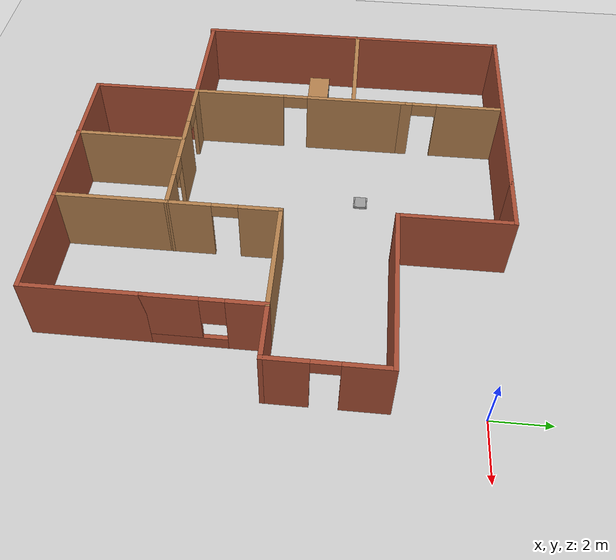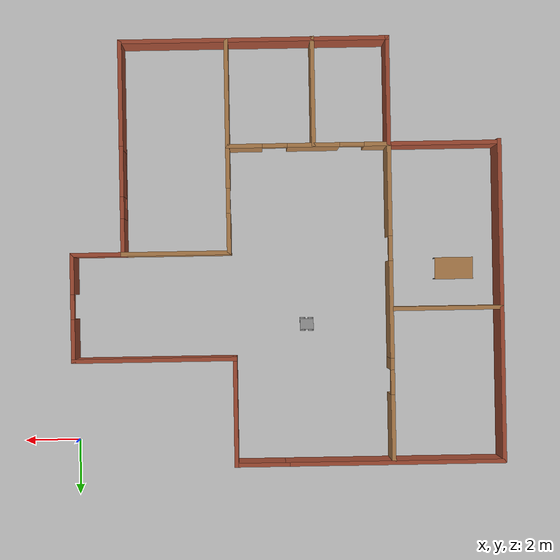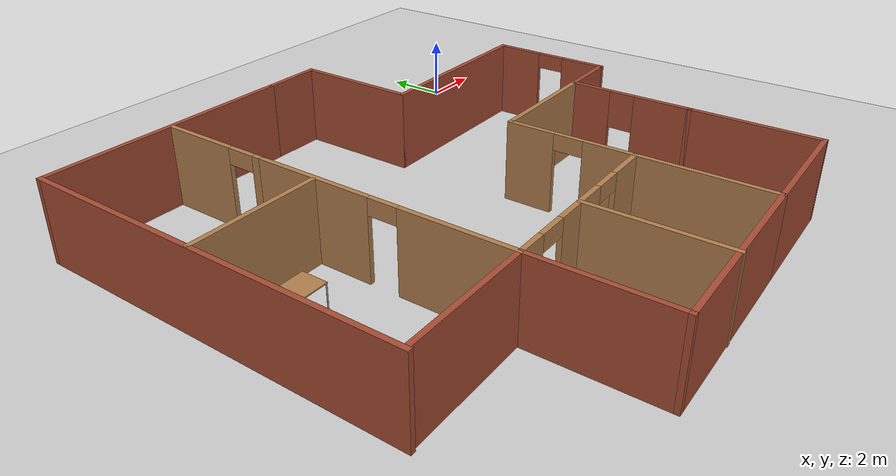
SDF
<sdf version="1.6">
 <world name="default">
  <model name="ground_plane">
   <static>1</static>
   <link name="link">
    <collision name="collision">
     <geometry><plane><normal>0 0 1</normal><size>100 100</size></plane></geometry>
     <surface><friction><ode><mu>100</mu><mu2>50</mu2></ode></friction></surface>
    </collision>
    <visual name="visual">
     <cast_shadows>0</cast_shadows>
     <geometry><plane><normal>0 0 1</normal><size>100 100</size></plane></geometry>
     <material>
      <script><uri>file://media/materials/scripts/gazebo.material</uri><name>Gazebo/Grey</name></script>
     </material>
    </visual>
   </link>
  </model>
  <model name="Building">
   <pose>-7.76735 -6.83416 0 0 -0 0</pose>
   <link name="Wall_0">
    <collision name="Wall_0_Collision">
     <geometry><box><size>2 0.15 2.5</size></box></geometry>
     <pose>0 0 1.25 0 -0 0</pose>
    </collision>
    <visual name="Wall_0_Visual">
     <pose>0 0 1.25 0 -0 0</pose>
     <geometry><box><size>2 0.15 2.5</size></box></geometry>
     <material>
      <script><uri>file://media/materials/scripts/gazebo.material</uri><name>Gazebo/Bricks</name></script>
      <ambient>1 1 1 1</ambient>
     </material>
    </visual>
    <pose>1 7.71108 0 0 -0 0</pose>
   </link>
   <link name="Wall_1">
    <collision name="Wall_1_Collision">
     <geometry><box><size>4 0.15 2.5</size></box></geometry>
     <pose>0 0 1.25 0 -0 0</pose>
    </collision>
    <visual name="Wall_1_Visual">
     <pose>0 0 1.25 0 -0 0</pose>
     <geometry><box><size>4 0.15 2.5</size></box></geometry>
     <material>
      <script><uri>file://media/materials/scripts/gazebo.material</uri><name>Gazebo/Bricks</name></script>
      <ambient>1 1 1 1</ambient>
     </material>
    </visual>
    <pose>1.925 5.78608 0 0 0 -1.5708</pose>
   </link>
   <link name="Wall_10">
    <collision name="Wall_10_Collision">
     <geometry><box><size>6 0.15 2.5</size></box></geometry>
     <pose>0 0 1.25 0 -0 0</pose>
    </collision>
    <visual name="Wall_10_Visual">
     <pose>0 0 1.25 0 -0 0</pose>
     <geometry><box><size>6 0.15 2.5</size></box></geometry>
     <material>
      <script><uri>file://media/materials/scripts/gazebo.material</uri><name>Gazebo/Bricks</name></script>
      <ambient>1 1 1 1</ambient>
     </material>
    </visual>
    <pose>-0.849999 -7.68892 0 0 -0 3.14159</pose>
   </link>
   <link name="Wall_105">
    <collision name="Wall_105_Collision">
     <geometry><box><size>4 0.15 2.5</size></box></geometry>
     <pose>0 0 1.25 0 -0 0</pose>
    </collision>
    <visual name="Wall_105_Visual">
     <pose>0 0 1.25 0 -0 0</pose>
     <geometry><box><size>4 0.15 2.5</size></box></geometry>
     <material>
      <script><uri>file://media/materials/scripts/gazebo.material</uri><name>Gazebo/Wood</name></script>
      <ambient>0.760784 0.662745 0.627451 1</ambient>
     </material>
    </visual>
    <pose>2.075 -5.76392 0 0 0 -1.5708</pose>
   </link>
   <link name="Wall_109">
    <collision name="Wall_109_Collision">
     <geometry><box><size>4 0.15 2.5</size></box></geometry>
     <pose>0 0 1.25 0 -0 0</pose>
    </collision>
    <visual name="Wall_109_Visual">
     <pose>0 0 1.25 0 -0 0</pose>
     <geometry><box><size>4 0.15 2.5</size></box></geometry>
     <material>
      <script><uri>file://media/materials/scripts/gazebo.material</uri><name>Gazebo/Wood</name></script>
      <ambient>0.760784 0.662745 0.627451 1</ambient>
     </material>
    </visual>
    <pose>-1.05166 -5.78608 0 0 0 -1.5708</pose>
   </link>
   <link name="Wall_11">
    <collision name="Wall_11_Collision">
     <geometry><box><size>4 0.15 2.5</size></box></geometry>
     <pose>0 0 1.25 0 -0 0</pose>
    </collision>
    <visual name="Wall_11_Visual">
     <pose>0 0 1.25 0 -0 0</pose>
     <geometry><box><size>4 0.15 2.5</size></box></geometry>
     <material>
      <script><uri>file://media/materials/scripts/gazebo.material</uri><name>Gazebo/Bricks</name></script>
      <ambient>1 1 1 1</ambient>
     </material>
    </visual>
    <pose>-3.775 -5.76392 0 0 -0 1.5708</pose>
   </link>
   <link name="Wall_113">
    <pose>-3.775 5.81108 0 0 -0 1.5708</pose>
    <visual name="Wall_113_Visual_0">
     <pose>-1.66581 0 1.25 0 -0 0</pose>
     <geometry><box><size>0.418378 0.15 2.5</size></box></geometry>
     <material>
      <script><uri>file://media/materials/scripts/gazebo.material</uri><name>Gazebo/Wood</name></script>
      <ambient>0.435294 0.796078 0.67451 1</ambient>
     </material>
    </visual>
    <collision name="Wall_113_Collision_0">
     <geometry><box><size>0.418378 0.15 2.5</size></box></geometry>
     <pose>-1.66581 0 1.25 0 -0 0</pose>
    </collision>
    <visual name="Wall_113_Visual_1">
     <pose>0.659189 0 1.25 0 -0 0</pose>
     <geometry><box><size>2.43162 0.15 2.5</size></box></geometry>
     <material>
      <script><uri>file://media/materials/scripts/gazebo.material</uri><name>Gazebo/Wood</name></script>
      <ambient>0.435294 0.796078 0.67451 1</ambient>
     </material>
    </visual>
    <collision name="Wall_113_Collision_1">
     <geometry><box><size>2.43162 0.15 2.5</size></box></geometry>
     <pose>0.659189 0 1.25 0 -0 0</pose>
    </collision>
    <visual name="Wall_113_Visual_2">
     <pose>-1.00662 0 2.25 0 -0 0</pose>
     <geometry><box><size>0.9 0.15 0.5</size></box></geometry>
     <material>
      <script><uri>file://media/materials/scripts/gazebo.material</uri><name>Gazebo/Wood</name></script>
      <ambient>0.435294 0.796078 0.67451 1</ambient>
     </material>
    </visual>
    <collision name="Wall_113_Collision_2">
     <geometry><box><size>0.9 0.15 0.5</size></box></geometry>
     <pose>-1.00662 0 2.25 0 -0 0</pose>
    </collision>
   </link>
   <link name="Wall_115">
    <collision name="Wall_115_Collision">
     <geometry><box><size>4 0.15 2.5</size></box></geometry>
     <pose>0 0 1.25 0 -0 0</pose>
    </collision>
    <visual name="Wall_115_Visual">
     <pose>0 0 1.25 0 -0 0</pose>
     <geometry><box><size>4 0.15 2.5</size></box></geometry>
     <material>
      <script><uri>file://media/materials/scripts/gazebo.material</uri><name>Gazebo/Wood</name></script>
      <ambient>0.435294 0.796078 0.67451 1</ambient>
     </material>
    </visual>
    <pose>-5.82317 2.14798 0 0 -0 0</pose>
   </link>
   <link name="Wall_12">
    <collision name="Wall_12_Collision">
     <geometry><box><size>4 0.15 2.5</size></box></geometry>
     <pose>0 0 1.25 0 -0 0</pose>
    </collision>
    <visual name="Wall_12_Visual">
     <pose>0 0 1.25 0 -0 0</pose>
     <geometry><box><size>4 0.15 2.5</size></box></geometry>
     <material>
      <script><uri>file://media/materials/scripts/gazebo.material</uri><name>Gazebo/Bricks</name></script>
      <ambient>1 1 1 1</ambient>
     </material>
    </visual>
    <pose>-5.7 -3.83892 0 0 -0 3.14159</pose>
   </link>
   <link name="Wall_15">
    <collision name="Wall_15_Collision">
     <geometry><box><size>8 0.15 2.5</size></box></geometry>
     <pose>0 0 1.25 0 -0 0</pose>
    </collision>
    <visual name="Wall_15_Visual">
     <pose>0 0 1.25 0 -0 0</pose>
     <geometry><box><size>8 0.15 2.5</size></box></geometry>
     <material>
      <script><uri>file://media/materials/scripts/gazebo.material</uri><name>Gazebo/Bricks</name></script>
      <ambient>1 1 1 1</ambient>
     </material>
    </visual>
    <pose>-3.85 7.71108 0 0 -0 3.14159</pose>
   </link>
   <link name="Wall_16">
    <collision name="Wall_16_Collision">
     <geometry><box><size>11.75 0.15 2.5</size></box></geometry>
     <pose>0 0 1.25 0 -0 0</pose>
    </collision>
    <visual name="Wall_16_Visual">
     <pose>0 0 1.25 0 -0 0</pose>
     <geometry><box><size>11.75 0.15 2.5</size></box></geometry>
     <material>
      <script><uri>file://media/materials/scripts/gazebo.material</uri><name>Gazebo/Bricks</name></script>
      <ambient>1 1 1 1</ambient>
     </material>
    </visual>
    <pose>-7.775 1.91108 0 0 0 -1.5708</pose>
   </link>
   <link name="Wall_18">
    <pose>-0.849999 -3.83892 0 0 -0 0</pose>
    <visual name="Wall_18_Visual_0">
     <pose>-2.51905 0 1.25 0 -0 0</pose>
     <geometry><box><size>0.961894 0.15 2.5</size></box></geometry>
     <material>
      <script><uri>file://media/materials/scripts/gazebo.material</uri><name>Gazebo/Wood</name></script>
      <ambient>0.760784 0.662745 0.627451 1</ambient>
     </material>
    </visual>
    <collision name="Wall_18_Collision_0">
     <geometry><box><size>0.961894 0.15 2.5</size></box></geometry>
     <pose>-2.51905 0 1.25 0 -0 0</pose>
    </collision>
    <visual name="Wall_18_Visual_1">
     <pose>-0.191308 0 1.25 0 -0 0</pose>
     <geometry><box><size>1.8936 0.15 2.5</size></box></geometry>
     <material>
      <script><uri>file://media/materials/scripts/gazebo.material</uri><name>Gazebo/Wood</name></script>
      <ambient>0.760784 0.662745 0.627451 1</ambient>
     </material>
    </visual>
    <collision name="Wall_18_Collision_1">
     <geometry><box><size>1.8936 0.15 2.5</size></box></geometry>
     <pose>-0.191308 0 1.25 0 -0 0</pose>
    </collision>
    <visual name="Wall_18_Visual_2">
     <pose>2.32775 0 1.25 0 -0 0</pose>
     <geometry><box><size>1.34451 0.15 2.5</size></box></geometry>
     <material>
      <script><uri>file://media/materials/scripts/gazebo.material</uri><name>Gazebo/Wood</name></script>
      <ambient>0.760784 0.662745 0.627451 1</ambient>
     </material>
    </visual>
    <collision name="Wall_18_Collision_2">
     <geometry><box><size>1.34451 0.15 2.5</size></box></geometry>
     <pose>2.32775 0 1.25 0 -0 0</pose>
    </collision>
    <visual name="Wall_18_Visual_3">
     <pose>-1.58811 0 2.25 0 -0 0</pose>
     <geometry><box><size>0.9 0.15 0.5</size></box></geometry>
     <material>
      <script><uri>file://media/materials/scripts/gazebo.material</uri><name>Gazebo/Wood</name></script>
      <ambient>0.760784 0.662745 0.627451 1</ambient>
     </material>
    </visual>
    <collision name="Wall_18_Collision_3">
     <geometry><box><size>0.9 0.15 0.5</size></box></geometry>
     <pose>-1.58811 0 2.25 0 -0 0</pose>
    </collision>
    <visual name="Wall_18_Visual_4">
     <pose>1.20549 0 2.25 0 -0 0</pose>
     <geometry><box><size>0.9 0.15 0.5</size></box></geometry>
     <material>
      <script><uri>file://media/materials/scripts/gazebo.material</uri><name>Gazebo/Wood</name></script>
      <ambient>0.760784 0.662745 0.627451 1</ambient>
     </material>
    </visual>
    <collision name="Wall_18_Collision_4">
     <geometry><box><size>0.9 0.15 0.5</size></box></geometry>
     <pose>1.20549 0 2.25 0 -0 0</pose>
    </collision>
   </link>
   <link name="Wall_2">
    <collision name="Wall_2_Collision">
     <geometry><box><size>6 0.15 2.5</size></box></geometry>
     <pose>0 0 1.25 0 -0 0</pose>
    </collision>
    <visual name="Wall_2_Visual">
     <pose>0 0 1.25 0 -0 0</pose>
     <geometry><box><size>6 0.15 2.5</size></box></geometry>
     <material>
      <script><uri>file://media/materials/scripts/gazebo.material</uri><name>Gazebo/Bricks</name></script>
      <ambient>1 1 1 1</ambient>
     </material>
    </visual>
    <pose>4.85 3.86108 0 0 -0 0</pose>
   </link>
   <link name="Wall_20">
    <pose>-3.775 0.086083 0 0 -0 1.5708</pose>
    <visual name="Wall_20_Visual_0">
     <pose>-2.29315 0 1.25 0 -0 0</pose>
     <geometry><box><size>3.41371 0.15 2.5</size></box></geometry>
     <material>
      <script><uri>file://media/materials/scripts/gazebo.material</uri><name>Gazebo/Wood</name></script>
      <ambient>0.435294 0.796078 0.67451 1</ambient>
     </material>
    </visual>
    <collision name="Wall_20_Collision_0">
     <geometry><box><size>3.41371 0.15 2.5</size></box></geometry>
     <pose>-2.29315 0 1.25 0 -0 0</pose>
    </collision>
    <visual name="Wall_20_Visual_1">
     <pose>2.15685 0 1.25 0 -0 0</pose>
     <geometry><box><size>3.68629 0.15 2.5</size></box></geometry>
     <material>
      <script><uri>file://media/materials/scripts/gazebo.material</uri><name>Gazebo/Wood</name></script>
      <ambient>0.435294 0.796078 0.67451 1</ambient>
     </material>
    </visual>
    <collision name="Wall_20_Collision_1">
     <geometry><box><size>3.68629 0.15 2.5</size></box></geometry>
     <pose>2.15685 0 1.25 0 -0 0</pose>
    </collision>
    <visual name="Wall_20_Visual_2">
     <pose>-0.136292 0 2.25 0 -0 0</pose>
     <geometry><box><size>0.9 0.15 0.5</size></box></geometry>
     <material>
      <script><uri>file://media/materials/scripts/gazebo.material</uri><name>Gazebo/Wood</name></script>
      <ambient>0.435294 0.796078 0.67451 1</ambient>
     </material>
    </visual>
    <collision name="Wall_20_Collision_2">
     <geometry><box><size>0.9 0.15 0.5</size></box></geometry>
     <pose>-0.136292 0 2.25 0 -0 0</pose>
    </collision>
   </link>
   <link name="Wall_23">
    <pose>2.075 -1.91392 0 0 -0 1.5708</pose>
    <visual name="Wall_23_Visual_0">
     <pose>-1.20497 0 1.25 0 -0 0</pose>
     <geometry><box><size>1.59006 0.15 2.5</size></box></geometry>
     <material>
      <script><uri>file://media/materials/scripts/gazebo.material</uri><name>Gazebo/Wood</name></script>
      <ambient>0.760784 0.662745 0.627451 1</ambient>
     </material>
    </visual>
    <collision name="Wall_23_Collision_0">
     <geometry><box><size>1.59006 0.15 2.5</size></box></geometry>
     <pose>-1.20497 0 1.25 0 -0 0</pose>
    </collision>
    <visual name="Wall_23_Visual_1">
     <pose>1.24503 0 1.25 0 -0 0</pose>
     <geometry><box><size>1.50994 0.15 2.5</size></box></geometry>
     <material>
      <script><uri>file://media/materials/scripts/gazebo.material</uri><name>Gazebo/Wood</name></script>
      <ambient>0.760784 0.662745 0.627451 1</ambient>
     </material>
    </visual>
    <collision name="Wall_23_Collision_1">
     <geometry><box><size>1.50994 0.15 2.5</size></box></geometry>
     <pose>1.24503 0 1.25 0 -0 0</pose>
    </collision>
    <visual name="Wall_23_Visual_2">
     <pose>0.040062 0 2.25 0 -0 0</pose>
     <geometry><box><size>0.9 0.15 0.5</size></box></geometry>
     <material>
      <script><uri>file://media/materials/scripts/gazebo.material</uri><name>Gazebo/Wood</name></script>
      <ambient>0.760784 0.662745 0.627451 1</ambient>
     </material>
    </visual>
    <collision name="Wall_23_Collision_2">
     <geometry><box><size>0.9 0.15 0.5</size></box></geometry>
     <pose>0.040062 0 2.25 0 -0 0</pose>
    </collision>
   </link>
   <link name="Wall_24">
    <collision name="Wall_24_Collision">
     <geometry><box><size>4 0.15 2.5</size></box></geometry>
     <pose>0 0 1.25 0 -0 0</pose>
    </collision>
    <visual name="Wall_24_Visual">
     <pose>0 0 1.25 0 -0 0</pose>
     <geometry><box><size>4 0.15 2.5</size></box></geometry>
     <material>
      <script><uri>file://media/materials/scripts/gazebo.material</uri><name>Gazebo/Wood</name></script>
      <ambient>0.760784 0.662745 0.627451 1</ambient>
     </material>
    </visual>
    <pose>4 0.011084 0 0 -0 0</pose>
   </link>
   <link name="Wall_26">
    <collision name="Wall_26_Collision">
     <geometry><box><size>4 0.15 2.5</size></box></geometry>
     <pose>0 0 1.25 0 -0 0</pose>
    </collision>
    <visual name="Wall_26_Visual">
     <pose>0 0 1.25 0 -0 0</pose>
     <geometry><box><size>4 0.15 2.5</size></box></geometry>
     <material>
      <script><uri>file://media/materials/scripts/gazebo.material</uri><name>Gazebo/Bricks</name></script>
      <ambient>1 1 1 1</ambient>
     </material>
    </visual>
    <pose>4 -7.68892 0 0 -0 0</pose>
   </link>
   <link name="Wall_27">
    <collision name="Wall_27_Collision">
     <geometry><box><size>4 0.15 2.5</size></box></geometry>
     <pose>0 0 1.25 0 -0 0</pose>
    </collision>
    <visual name="Wall_27_Visual">
     <pose>0 0 1.25 0 -0 0</pose>
     <geometry><box><size>4 0.15 2.5</size></box></geometry>
     <material>
      <script><uri>file://media/materials/scripts/gazebo.material</uri><name>Gazebo/Bricks</name></script>
      <ambient>1 1 1 1</ambient>
     </material>
    </visual>
    <pose>5.925 -5.76392 0 0 -0 1.5708</pose>
   </link>
   <link name="Wall_3">
    <pose>7.775 1.93608 0 0 0 -1.5708</pose>
    <visual name="Wall_3_Visual_0">
     <pose>-1.19927 0 1.25 0 -0 0</pose>
     <geometry><box><size>1.60146 0.15 2.5</size></box></geometry>
     <material>
      <script><uri>file://media/materials/scripts/gazebo.material</uri><name>Gazebo/Bricks</name></script>
      <ambient>1 1 1 1</ambient>
     </material>
    </visual>
    <collision name="Wall_3_Collision_0">
     <geometry><box><size>1.60146 0.15 2.5</size></box></geometry>
     <pose>-1.19927 0 1.25 0 -0 0</pose>
    </collision>
    <visual name="Wall_3_Visual_1">
     <pose>1.25073 0 1.25 0 -0 0</pose>
     <geometry><box><size>1.49854 0.15 2.5</size></box></geometry>
     <material>
      <script><uri>file://media/materials/scripts/gazebo.material</uri><name>Gazebo/Bricks</name></script>
      <ambient>1 1 1 1</ambient>
     </material>
    </visual>
    <collision name="Wall_3_Collision_1">
     <geometry><box><size>1.49854 0.15 2.5</size></box></geometry>
     <pose>1.25073 0 1.25 0 -0 0</pose>
    </collision>
    <visual name="Wall_3_Visual_2">
     <pose>0.051459 0 2.25 0 -0 0</pose>
     <geometry><box><size>0.9 0.15 0.5</size></box></geometry>
     <material>
      <script><uri>file://media/materials/scripts/gazebo.material</uri><name>Gazebo/Bricks</name></script>
      <ambient>1 1 1 1</ambient>
     </material>
    </visual>
    <collision name="Wall_3_Collision_2">
     <geometry><box><size>0.9 0.15 0.5</size></box></geometry>
     <pose>0.051459 0 2.25 0 -0 0</pose>
    </collision>
   </link>
   <link name="Wall_4">
    <collision name="Wall_4_Collision">
     <geometry><box><size>2 0.15 2.5</size></box></geometry>
     <pose>0 0 1.25 0 -0 0</pose>
    </collision>
    <visual name="Wall_4_Visual">
     <pose>0 0 1.25 0 -0 0</pose>
     <geometry><box><size>2 0.15 2.5</size></box></geometry>
     <material>
      <script><uri>file://media/materials/scripts/gazebo.material</uri><name>Gazebo/Bricks</name></script>
      <ambient>1 1 1 1</ambient>
     </material>
    </visual>
    <pose>6.85 0.011084 0 0 -0 3.14159</pose>
   </link>
   <link name="Wall_6">
    <pose>5.925 -1.91392 0 0 0 -1.5708</pose>
    <visual name="Wall_6_Visual_0">
     <pose>-1.31823 0 1.25 0 -0 0</pose>
     <geometry><box><size>1.36353 0.15 2.5</size></box></geometry>
     <material>
      <script><uri>file://media/materials/scripts/gazebo.material</uri><name>Gazebo/Bricks</name></script>
      <ambient>1 1 1 1</ambient>
     </material>
    </visual>
    <collision name="Wall_6_Collision_0">
     <geometry><box><size>1.36353 0.15 2.5</size></box></geometry>
     <pose>-1.31823 0 1.25 0 -0 0</pose>
    </collision>
    <visual name="Wall_6_Visual_1">
     <pose>0.681767 0 0.25 0 -0 0</pose>
     <geometry><box><size>2.63647 0.15 0.5</size></box></geometry>
     <material>
      <script><uri>file://media/materials/scripts/gazebo.material</uri><name>Gazebo/Bricks</name></script>
      <ambient>1 1 1 1</ambient>
     </material>
    </visual>
    <collision name="Wall_6_Collision_1">
     <geometry><box><size>2.63647 0.15 0.5</size></box></geometry>
     <pose>0.681767 0 0.25 0 -0 0</pose>
    </collision>
    <visual name="Wall_6_Visual_2">
     <pose>1.08177 0 1.5 0 -0 0</pose>
     <geometry><box><size>1.83647 0.15 2</size></box></geometry>
     <material>
      <script><uri>file://media/materials/scripts/gazebo.material</uri><name>Gazebo/Bricks</name></script>
      <ambient>1 1 1 1</ambient>
     </material>
    </visual>
    <collision name="Wall_6_Collision_2">
     <geometry><box><size>1.83647 0.15 2</size></box></geometry>
     <pose>1.08177 0 1.5 0 -0 0</pose>
    </collision>
    <visual name="Wall_6_Visual_3">
     <pose>-0.236466 0 1.9 0 -0 0</pose>
     <geometry><box><size>0.8 0.15 1.2</size></box></geometry>
     <material>
      <script><uri>file://media/materials/scripts/gazebo.material</uri><name>Gazebo/Bricks</name></script>
      <ambient>1 1 1 1</ambient>
     </material>
    </visual>
    <collision name="Wall_6_Collision_3">
     <geometry><box><size>0.8 0.15 1.2</size></box></geometry>
     <pose>-0.236466 0 1.9 0 -0 0</pose>
    </collision>
   </link>
   <static>1</static>
  </model>
  <model name="Car">
   <link name="link_0">
    <inertial>
     <mass>1</mass>
     <inertia>
      <ixx>0.166667</ixx>
      <ixy>0</ixy>
      <ixz>0</ixz>
      <iyy>0.166667</iyy>
      <iyz>0</iyz>
      <izz>0.166667</izz>
     </inertia>
    </inertial>
    <visual name="visual">
     <geometry><box><size>0.5 0.4 0.1</size></box></geometry>
     <material>
      <lighting>1</lighting>
      <script><uri>file://media/materials/scripts/gazebo.material</uri><name>Gazebo/Grey</name></script>
      <ambient>0.3 0.3 0.3 1</ambient>
      <diffuse>0.7 0.7 0.7 1</diffuse>
      <specular>0.01 0.01 0.01 1</specular>
      <emissive>0 0 0 1</emissive>
      <shader type="vertex"><normal_map>__default__</normal_map></shader>
     </material>
    </visual>
    <collision name="collision">
     <geometry><box><size>0.5 0.4 0.1</size></box></geometry>
     <surface>
      <friction>
       <ode><mu>1</mu><mu2>1</mu2><fdir1>0 0 0</fdir1><slip1>0</slip1><slip2>0</slip2></ode>
       <torsional>
        <coefficient>1</coefficient>
        <patch_radius>0</patch_radius>
        <surface_radius>0</surface_radius>
        <use_patch_radius>1</use_patch_radius>
        <ode><slip>0</slip></ode>
       </torsional>
      </friction>
      <bounce><restitution_coefficient>0</restitution_coefficient><threshold>1e+06</threshold></bounce>
      <contact>
       <collide_without_contact>0</collide_without_contact>
       <collide_without_contact_bitmask>1</collide_without_contact_bitmask>
       <collide_bitmask>1</collide_bitmask>
       <ode>
        <soft_cfm>0</soft_cfm>
        <soft_erp>0.2</soft_erp>
        <kp>1e+13</kp>
        <kd>1</kd>
        <max_vel>0.01</max_vel>
        <min_depth>0</min_depth>
       </ode>
       <bullet>
        <split_impulse>1</split_impulse>
        <split_impulse_penetration_threshold>-0.01</split_impulse_penetration_threshold>
        <soft_cfm>0</soft_cfm>
        <soft_erp>0.2</soft_erp>
        <kp>1e+13</kp>
        <kd>1</kd>
       </bullet>
      </contact>
     </surface>
    </collision>
   </link>
   <link name="link_1">
    <pose>-0.15 -0.22501 0 1.5707 -0 0</pose>
    <inertial>
     <mass>1</mass>
     <inertia><ixx>0.145833</ixx><ixy>0</ixy><ixz>0</ixz><iyy>0.145833</iyy><iyz>0</iyz><izz>0.125</izz></inertia>
    </inertial>
    <visual name="visual">
     <geometry><cylinder><radius>0.1</radius><length>0.05</length></cylinder></geometry>
     <material>
      <lighting>1</lighting>
      <script><uri>file://media/materials/scripts/gazebo.material</uri><name>Gazebo/Grey</name></script>
      <ambient>0.3 0.3 0.3 1</ambient>
      <diffuse>0.7 0.7 0.7 1</diffuse>
      <specular>0.01 0.01 0.01 1</specular>
      <emissive>0 0 0 1</emissive>
      <shader type="vertex"><normal_map>__default__</normal_map></shader>
     </material>
    </visual>
    <collision name="collision">
     <geometry><cylinder><radius>0.1</radius><length>0.05</length></cylinder></geometry>
     <surface>
      <friction>
       <ode><mu>1</mu><mu2>1</mu2><fdir1>0 0 0</fdir1><slip1>0</slip1><slip2>0</slip2></ode>
       <torsional>
        <coefficient>1</coefficient>
        <patch_radius>0</patch_radius>
        <surface_radius>0</surface_radius>
        <use_patch_radius>1</use_patch_radius>
        <ode><slip>0</slip></ode>
       </torsional>
      </friction>
      <bounce><restitution_coefficient>0</restitution_coefficient><threshold>1e+06</threshold></bounce>
      <contact>
       <collide_without_contact>0</collide_without_contact>
       <collide_without_contact_bitmask>1</collide_without_contact_bitmask>
       <collide_bitmask>1</collide_bitmask>
       <ode>
        <soft_cfm>0</soft_cfm>
        <soft_erp>0.2</soft_erp>
        <kp>1e+13</kp>
        <kd>1</kd>
        <max_vel>0.01</max_vel>
        <min_depth>0</min_depth>
       </ode>
       <bullet>
        <split_impulse>1</split_impulse>
        <split_impulse_penetration_threshold>-0.01</split_impulse_penetration_threshold>
        <soft_cfm>0</soft_cfm>
        <soft_erp>0.2</soft_erp>
        <kp>1e+13</kp>
        <kd>1</kd>
       </bullet>
      </contact>
     </surface>
    </collision>
   </link>
   <link name="link_1_clone">
    <pose>-0.15 0.22501 0 1.5707 -0 0</pose>
    <inertial>
     <mass>1</mass>
     <inertia><ixx>0.145833</ixx><ixy>0</ixy><ixz>0</ixz><iyy>0.145833</iyy><iyz>0</iyz><izz>0.125</izz></inertia>
    </inertial>
    <visual name="visual">
     <geometry><cylinder><radius>0.1</radius><length>0.05</length></cylinder></geometry>
     <material>
      <lighting>1</lighting>
      <script><uri>file://media/materials/scripts/gazebo.material</uri><name>Gazebo/Grey</name></script>
      <ambient>0.3 0.3 0.3 1</ambient>
      <diffuse>0.7 0.7 0.7 1</diffuse>
      <specular>0.01 0.01 0.01 1</specular>
      <emissive>0 0 0 1</emissive>
      <shader type="vertex"><normal_map>__default__</normal_map></shader>
     </material>
    </visual>
    <collision name="collision">
     <geometry><cylinder><radius>0.1</radius><length>0.05</length></cylinder></geometry>
     <surface>
      <friction>
       <ode><mu>1</mu><mu2>1</mu2><fdir1>0 0 0</fdir1><slip1>0</slip1><slip2>0</slip2></ode>
       <torsional>
        <coefficient>1</coefficient>
        <patch_radius>0</patch_radius>
        <surface_radius>0</surface_radius>
        <use_patch_radius>1</use_patch_radius>
        <ode><slip>0</slip></ode>
       </torsional>
      </friction>
      <bounce><restitution_coefficient>0</restitution_coefficient><threshold>1e+06</threshold></bounce>
      <contact>
       <collide_without_contact>0</collide_without_contact>
       <collide_without_contact_bitmask>1</collide_without_contact_bitmask>
       <collide_bitmask>1</collide_bitmask>
       <ode>
        <soft_cfm>0</soft_cfm>
        <soft_erp>0.2</soft_erp>
        <kp>1e+13</kp>
        <kd>1</kd>
        <max_vel>0.01</max_vel>
        <min_depth>0</min_depth>
       </ode>
       <bullet>
        <split_impulse>1</split_impulse>
        <split_impulse_penetration_threshold>-0.01</split_impulse_penetration_threshold>
        <soft_cfm>0</soft_cfm>
        <soft_erp>0.2</soft_erp>
        <kp>1e+13</kp>
        <kd>1</kd>
       </bullet>
      </contact>
     </surface>
    </collision>
   </link>
   <link name="link_1_clone_0">
    <pose>0.15 -0.22501 0 1.5707 -0 0</pose>
    <inertial>
     <mass>1</mass>
     <inertia><ixx>0.145833</ixx><ixy>0</ixy><ixz>0</ixz><iyy>0.145833</iyy><iyz>0</iyz><izz>0.125</izz></inertia>
    </inertial>
    <visual name="visual">
     <geometry><cylinder><radius>0.1</radius><length>0.05</length></cylinder></geometry>
     <material>
      <lighting>1</lighting>
      <script><uri>file://media/materials/scripts/gazebo.material</uri><name>Gazebo/Grey</name></script>
      <ambient>0.3 0.3 0.3 1</ambient>
      <diffuse>0.7 0.7 0.7 1</diffuse>
      <specular>0.01 0.01 0.01 1</specular>
      <emissive>0 0 0 1</emissive>
      <shader type="vertex"><normal_map>__default__</normal_map></shader>
     </material>
    </visual>
    <collision name="collision">
     <geometry><cylinder><radius>0.1</radius><length>0.05</length></cylinder></geometry>
     <surface>
      <friction>
       <ode><mu>1</mu><mu2>1</mu2><fdir1>0 0 0</fdir1><slip1>0</slip1><slip2>0</slip2></ode>
       <torsional>
        <coefficient>1</coefficient>
        <patch_radius>0</patch_radius>
        <surface_radius>0</surface_radius>
        <use_patch_radius>1</use_patch_radius>
        <ode><slip>0</slip></ode>
       </torsional>
      </friction>
      <bounce><restitution_coefficient>0</restitution_coefficient><threshold>1e+06</threshold></bounce>
      <contact>
       <collide_without_contact>0</collide_without_contact>
       <collide_without_contact_bitmask>1</collide_without_contact_bitmask>
       <collide_bitmask>1</collide_bitmask>
       <ode>
        <soft_cfm>0</soft_cfm>
        <soft_erp>0.2</soft_erp>
        <kp>1e+13</kp>
        <kd>1</kd>
        <max_vel>0.01</max_vel>
        <min_depth>0</min_depth>
       </ode>
       <bullet>
        <split_impulse>1</split_impulse>
        <split_impulse_penetration_threshold>-0.01</split_impulse_penetration_threshold>
        <soft_cfm>0</soft_cfm>
        <soft_erp>0.2</soft_erp>
        <kp>1e+13</kp>
        <kd>1</kd>
       </bullet>
      </contact>
     </surface>
    </collision>
   </link>
   <link name="link_1_clone_1">
    <pose>0.15 0.22501 0 1.5707 -0 0</pose>
    <inertial>
     <mass>1</mass>
     <inertia><ixx>0.145833</ixx><ixy>0</ixy><ixz>0</ixz><iyy>0.145833</iyy><iyz>0</iyz><izz>0.125</izz></inertia>
    </inertial>
    <visual name="visual">
     <geometry><cylinder><radius>0.1</radius><length>0.05</length></cylinder></geometry>
     <material>
      <lighting>1</lighting>
      <script><uri>file://media/materials/scripts/gazebo.material</uri><name>Gazebo/Grey</name></script>
      <ambient>0.3 0.3 0.3 1</ambient>
      <diffuse>0.7 0.7 0.7 1</diffuse>
      <specular>0.01 0.01 0.01 1</specular>
      <emissive>0 0 0 1</emissive>
      <shader type="vertex"><normal_map>__default__</normal_map></shader>
     </material>
    </visual>
    <collision name="collision">
     <geometry><cylinder><radius>0.1</radius><length>0.05</length></cylinder></geometry>
     <surface>
      <friction>
       <ode><mu>1</mu><mu2>1</mu2><fdir1>0 0 0</fdir1><slip1>0</slip1><slip2>0</slip2></ode>
       <torsional>
        <coefficient>1</coefficient>
        <patch_radius>0</patch_radius>
        <surface_radius>0</surface_radius>
        <use_patch_radius>1</use_patch_radius>
        <ode><slip>0</slip></ode>
       </torsional>
      </friction>
      <bounce><restitution_coefficient>0</restitution_coefficient><threshold>1e+06</threshold></bounce>
      <contact>
       <collide_without_contact>0</collide_without_contact>
       <collide_without_contact_bitmask>1</collide_without_contact_bitmask>
       <collide_bitmask>1</collide_bitmask>
       <ode>
        <soft_cfm>0</soft_cfm>
        <soft_erp>0.2</soft_erp>
        <kp>1e+13</kp>
        <kd>1</kd>
        <max_vel>0.01</max_vel>
        <min_depth>0</min_depth>
       </ode>
       <bullet>
        <split_impulse>1</split_impulse>
        <split_impulse_penetration_threshold>-0.01</split_impulse_penetration_threshold>
        <soft_cfm>0</soft_cfm>
        <soft_erp>0.2</soft_erp>
        <kp>1e+13</kp>
        <kd>1</kd>
       </bullet>
      </contact>
     </surface>
    </collision>
   </link>
   <joint name="link_0_JOINT_0" type="revolute">
    <parent>link_0</parent>
    <child>link_1</child>
    <axis>
     <xyz>1 0 0</xyz>
     <use_parent_model_frame>0</use_parent_model_frame>
     <limit>
      <lower>-1.79769e+308</lower>
      <upper>1.79769e+308</upper>
      <effort>-1</effort>
      <velocity>-1</velocity>
     </limit>
     <dynamics>
      <spring_reference>0</spring_reference>
      <spring_stiffness>0</spring_stiffness>
      <damping>0</damping>
     </dynamics>
    </axis>
    <physics>
     <ode><limit><cfm>0</cfm><erp>0.2</erp></limit><suspension><cfm>0</cfm><erp>0.2</erp></suspension></ode>
    </physics>
   </joint>
   <joint name="link_0_JOINT_1" type="revolute">
    <parent>link_0</parent>
    <child>link_1</child>
    <axis>
     <xyz>1 0 0</xyz>
     <use_parent_model_frame>0</use_parent_model_frame>
     <limit>
      <lower>-1.79769e+308</lower>
      <upper>1.79769e+308</upper>
      <effort>-1</effort>
      <velocity>-1</velocity>
     </limit>
     <dynamics>
      <spring_reference>0</spring_reference>
      <spring_stiffness>0</spring_stiffness>
      <damping>0</damping>
     </dynamics>
    </axis>
    <physics>
     <ode><limit><cfm>0</cfm><erp>0.2</erp></limit><suspension><cfm>0</cfm><erp>0.2</erp></suspension></ode>
    </physics>
   </joint>
   <joint name="link_0_JOINT_2" type="revolute">
    <parent>link_0</parent>
    <child>link_1_clone</child>
    <axis>
     <xyz>1 0 0</xyz>
     <use_parent_model_frame>0</use_parent_model_frame>
     <limit>
      <lower>-1.79769e+308</lower>
      <upper>1.79769e+308</upper>
      <effort>-1</effort>
      <velocity>-1</velocity>
     </limit>
     <dynamics>
      <spring_reference>0</spring_reference>
      <spring_stiffness>0</spring_stiffness>
      <damping>0</damping>
     </dynamics>
    </axis>
    <physics>
     <ode><limit><cfm>0</cfm><erp>0.2</erp></limit><suspension><cfm>0</cfm><erp>0.2</erp></suspension></ode>
    </physics>
   </joint>
   <joint name="link_0_JOINT_3" type="revolute">
    <parent>link_0</parent>
    <child>link_1_clone_0</child>
    <axis>
     <xyz>1 0 0</xyz>
     <use_parent_model_frame>0</use_parent_model_frame>
     <limit>
      <lower>-1.79769e+308</lower>
      <upper>1.79769e+308</upper>
      <effort>-1</effort>
      <velocity>-1</velocity>
     </limit>
     <dynamics>
      <spring_reference>0</spring_reference>
      <spring_stiffness>0</spring_stiffness>
      <damping>0</damping>
     </dynamics>
    </axis>
    <physics>
     <ode><limit><cfm>0</cfm><erp>0.2</erp></limit><suspension><cfm>0</cfm><erp>0.2</erp></suspension></ode>
    </physics>
   </joint>
   <joint name="link_0_JOINT_4" type="revolute">
    <parent>link_0</parent>
    <child>link_1_clone_1</child>
    <axis>
     <xyz>1 0 0</xyz>
     <use_parent_model_frame>0</use_parent_model_frame>
     <limit>
      <lower>-1.79769e+308</lower>
      <upper>1.79769e+308</upper>
      <effort>-1</effort>
      <velocity>-1</velocity>
     </limit>
     <dynamics>
      <spring_reference>0</spring_reference>
      <spring_stiffness>0</spring_stiffness>
      <damping>0</damping>
     </dynamics>
    </axis>
    <physics>
     <ode><limit><cfm>0</cfm><erp>0.2</erp></limit><suspension><cfm>0</cfm><erp>0.2</erp></suspension></ode>
    </physics>
   </joint>
   <static>0</static>
   <pose>-8.50655 -4.16203 0.1 0 -0 0.000426</pose>
  </model>
  <model name="table">
   <static>0</static>
   <link name="link">
    <collision name="surface">
     <pose>0 0 1 0 -0 0</pose>
     <geometry><box><size>1.5 0.8 0.03</size></box></geometry>
     <surface><friction><ode><mu>0.6</mu><mu2>0.6</mu2></ode></friction></surface>
    </collision>
    <visual name="visual1">
     <pose>0 0 1 0 -0 0</pose>
     <geometry><box><size>1.4 0.8 0.04</size></box></geometry>
     <material>
      <script><uri>file://media/materials/scripts/gazebo.material</uri><name>Gazebo/Wood</name></script>
     </material>
    </visual>
    <collision name="front_left_leg">
     <pose>0.68 0.38 0.5 0 -0 0</pose>
     <geometry><cylinder><radius>0.02</radius><length>1</length></cylinder></geometry>
    </collision>
    <visual name="front_left_leg">
     <pose>0.68 0.38 0.5 0 -0 0</pose>
     <geometry><cylinder><radius>0.02</radius><length>1</length></cylinder></geometry>
     <material>
      <script><uri>file://media/materials/scripts/gazebo.material</uri><name>Gazebo/Grey</name></script>
     </material>
    </visual>
    <collision name="front_right_leg">
     <pose>0.68 -0.38 0.5 0 -0 0</pose>
     <geometry><cylinder><radius>0.02</radius><length>1</length></cylinder></geometry>
    </collision>
    <visual name="front_right_leg">
     <pose>0.68 -0.38 0.5 0 -0 0</pose>
     <geometry><cylinder><radius>0.02</radius><length>1</length></cylinder></geometry>
     <material>
      <script><uri>file://media/materials/scripts/gazebo.material</uri><name>Gazebo/Grey</name></script>
     </material>
    </visual>
    <collision name="back_right_leg">
     <pose>-0.68 -0.38 0.5 0 -0 0</pose>
     <geometry><cylinder><radius>0.02</radius><length>1</length></cylinder></geometry>
    </collision>
    <visual name="back_right_leg">
     <pose>-0.68 -0.38 0.5 0 -0 0</pose>
     <geometry><cylinder><radius>0.02</radius><length>1</length></cylinder></geometry>
     <material>
      <script><uri>file://media/materials/scripts/gazebo.material</uri><name>Gazebo/Grey</name></script>
     </material>
    </visual>
    <collision name="back_left_leg">
     <pose>-0.68 0.38 0.5 0 -0 0</pose>
     <geometry><cylinder><radius>0.02</radius><length>1</length></cylinder></geometry>
    </collision>
    <visual name="back_left_leg">
     <pose>-0.68 0.38 0.5 0 -0 0</pose>
     <geometry><cylinder><radius>0.02</radius><length>1</length></cylinder></geometry>
     <material>
      <script><uri>file://media/materials/scripts/gazebo.material</uri><name>Gazebo/Grey</name></script>
     </material>
    </visual>
    <inertial>
     <inertia><ixx>1</ixx><ixy>0</ixy><ixz>0</ixz><iyy>1</iyy><iyz>0</iyz><izz>1</izz></inertia>
     <mass>1</mass>
    </inertial>
   </link>
   <pose>-13.9383 -6.13967 -8e-06 0 -0 0</pose>
  </model>
 </world>
</sdf>
